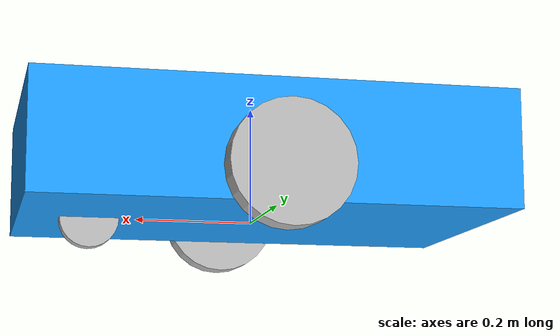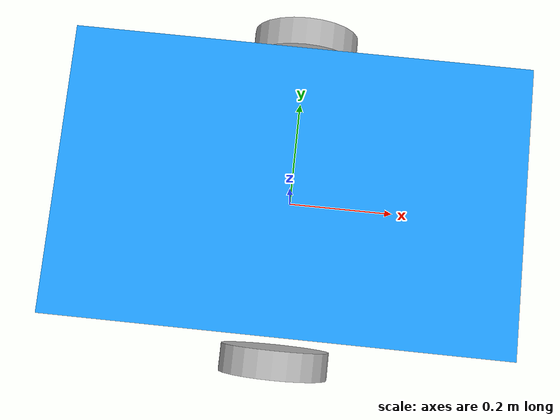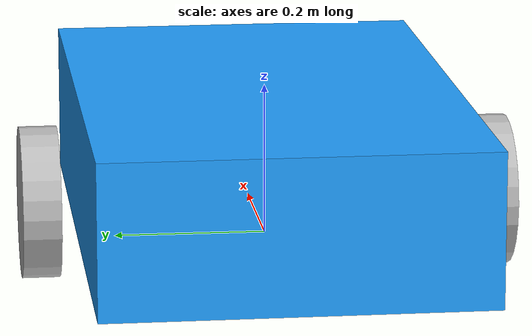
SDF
<sdf version='1.11'>
  <model name='restaurant_robot'>
    <link name='base_link'>
      <inertial>
        <pose>0.05 0 0.1 0 0 0</pose>
        <mass>10</mass>
        <inertia>
          <ixx>0.2416666667</ixx>
          <ixy>0</ixy>
          <ixz>0</ixz>
          <iyy>0.5666666667</iyy>
          <iyz>0</iyz>
          <izz>0.7416666667</izz>
        </inertia>
      </inertial>
      <collision name='base_link_collision'>
        <pose>0 0 0.10000000000000001 0 0 0</pose>
        <geometry>
          <box>
            <size>0.80000000000000004 0.5 0.20000000000000001</size>
          </box>
        </geometry>
      </collision>
      <visual name='base_link_viusal'>
        <pose>0 0 0.1 0 0 0</pose>
        <geometry>
          <box>
            <size>0.8 0.5 0.2</size>
          </box>
        </geometry>
        <material>
          <diffuse>0.125 0.625 1 1</diffuse>
          <ambient>0.125 0.625 1 1</ambient>
        </material>
      </visual>
      <sensor name='front_lidar' type='gpu_lidar'>
        <pose>0.25 0 0.23 0 0 0</pose>
        <topic>lidar</topic>
        <update_rate>10</update_rate>
        <ray>
          <scan>
            <horizontal>
              <samples>181</samples>
              <resolution>1</resolution>
              <min_angle>-1.5708</min_angle>
              <max_angle>1.5708</max_angle>
            </horizontal>
          </scan>
          <range>
            <min>0.12</min>
            <max>8.0</max>
            <resolution>0.01</resolution>
          </range>
          </ray>
          <always_on>true</always_on>
          <visualize>true</visualize>
        </sensor>
    </link>
    <joint name='left_wheel_joint' type='revolute'>
      <pose relative_to='base_link'>0 0.29999999999999999 0.050000000000000003 0 0 0</pose>
      <parent>base_link</parent>
      <child>left_wheel</child>
      <axis>
        <xyz>0 1 0</xyz>
        <limit>
          <lower>-inf</lower>
          <upper>inf</upper>
        </limit>
        <dynamics>
          <spring_reference>0</spring_reference>
          <spring_stiffness>0</spring_stiffness>
        </dynamics>
      </axis>
    </joint>
    <link name='left_wheel'>
      <pose relative_to='left_wheel_joint'>0 0 0 0 0 0</pose>
      <inertial>
        <pose>0 0 0 0 0 0</pose>
        <mass>1</mass>
        <inertia>
          <ixx>0.0027100000000000002</ixx>
          <ixy>0</ixy>
          <ixz>0</ixz>
          <iyy>0.0050000000000000001</iyy>
          <iyz>0</iyz>
          <izz>0.0027100000000000002</izz>
        </inertia>
      </inertial>
      <collision name='left_wheel_collision'>
        <pose>0 0 0 1.5708 0 0</pose>
        <geometry>
          <cylinder>
            <length>0.005</length>
            <radius>0.10000000000000001</radius>
          </cylinder>
        </geometry>
      </collision>
      <visual name='left_wheel_visual'>
        <pose>0 0 0 1.5708 0 0</pose>
        <geometry>
          <cylinder>
            <length>0.050000000000000003</length>
            <radius>0.10000000000000001</radius>
          </cylinder>
        </geometry>
      </visual>
    </link>
    <joint name='right_wheel_joint' type='revolute'>
      <pose relative_to='base_link'>0 -0.29999999999999999 0.050000000000000003 0 0 0</pose>
      <parent>base_link</parent>
      <child>right_wheel</child>
      <axis>
        <xyz>0 1 0</xyz>
        <limit>
          <lower>-inf</lower>
          <upper>inf</upper>
        </limit>
        <dynamics>
          <spring_reference>0</spring_reference>
          <spring_stiffness>0</spring_stiffness>
        </dynamics>
      </axis>
    </joint>
    <link name='right_wheel'>
      <pose relative_to='right_wheel_joint'>0 0 0 0 0 0</pose>
      <inertial>
        <pose>0 0 0 0 0 0</pose>
        <mass>1</mass>
        <inertia>
          <ixx>0.0027100000000000002</ixx>
          <ixy>0</ixy>
          <ixz>0</ixz>
          <iyy>0.0050000000000000001</iyy>
          <iyz>0</iyz>
          <izz>0.0027100000000000002</izz>
        </inertia>
      </inertial>
      <collision name='right_wheel_collision'>
        <pose>0 0 0 1.5708 0 0</pose>
        <geometry>
          <cylinder>
            <length>0.005</length>
            <radius>0.10000000000000001</radius>
          </cylinder>
        </geometry>
      </collision>
      <visual name='right_wheel_visual'>
        <pose>0 0 0 1.5708 0 0</pose>
        <geometry>
          <cylinder>
            <length>0.050000000000000003</length>
            <radius>0.10000000000000001</radius>
          </cylinder>
        </geometry>
      </visual>
    </link>
    <link name='caster_fork'>
      <pose relative_to='base_link'>0.30 0 0 0 0 0</pose>

      <inertial>
        <mass>0.1</mass>
        <inertia>
          <ixx>0.0001</ixx>
          <iyy>0.0001</iyy>
          <izz>0.0001</izz>
        </inertia>
      </inertial>
    </link>

    <joint name='caster_swivel_joint' type='revolute'>
      <pose relative_to='base_link'>0.30 0 0 0 0 0</pose>

      <parent>base_link</parent>
      <child>caster_fork</child>

      <axis>
        <xyz>0 0 1</xyz>
        <limit>
          <lower>-inf</lower>
          <upper>inf</upper>
        </limit>
      </axis>
    </joint>
    <link name='caster_wheel'>
      <pose relative_to='caster_fork'>-0.02 0 0 0 0 0</pose>

      <inertial>
        <mass>0.1</mass>
        <inertia>
          <ixx>0.0001</ixx>
          <iyy>0.0001</iyy>
          <izz>0.0001</izz>
        </inertia>
      </inertial>

      <collision name='caster_wheel_collision'>
        <pose>0 0 0 1.5708 0 0</pose>
        <geometry>
          <cylinder>
            <radius>0.05</radius>
            <length>0.03</length>
          </cylinder>
        </geometry>
      </collision>

      <visual name='caster_wheel_visual'>
        <pose>0 0 0 1.5708 0 0</pose>
        <geometry>
          <cylinder>
            <radius>0.05</radius>
            <length>0.03</length>
          </cylinder>
        </geometry>
      </visual>
    </link>

    <joint name='caster_wheel_joint' type='revolute'>
      <pose relative_to='caster_fork'>-0.02 0 0 0 0 0</pose>

      <parent>caster_fork</parent>
      <child>caster_wheel</child>

      <axis>
        <xyz>0 1 0</xyz>
        <limit>
          <lower>-inf</lower>
          <upper>inf</upper>
        </limit>
      </axis>
    </joint>
    <plugin
      filename="gz-sim-diff-drive-system"
      name="gz::sim::systems::DiffDrive">

      <left_joint>left_wheel_joint</left_joint>
      <right_joint>right_wheel_joint</right_joint>

      <wheel_separation>0.60</wheel_separation>
      <wheel_radius>0.10</wheel_radius>

      <odom_publish_frequency>10</odom_publish_frequency>

      <topic>cmd_vel</topic>
    </plugin>
    <plugin
      filename="gz-sim-joint-state-publisher-system"
      name="gz::sim::systems::JointStatePublisher">

      <joint_name>left_wheel_joint</joint_name>
      <joint_name>right_wheel_joint</joint_name>

    </plugin>
  </model>
</sdf>
